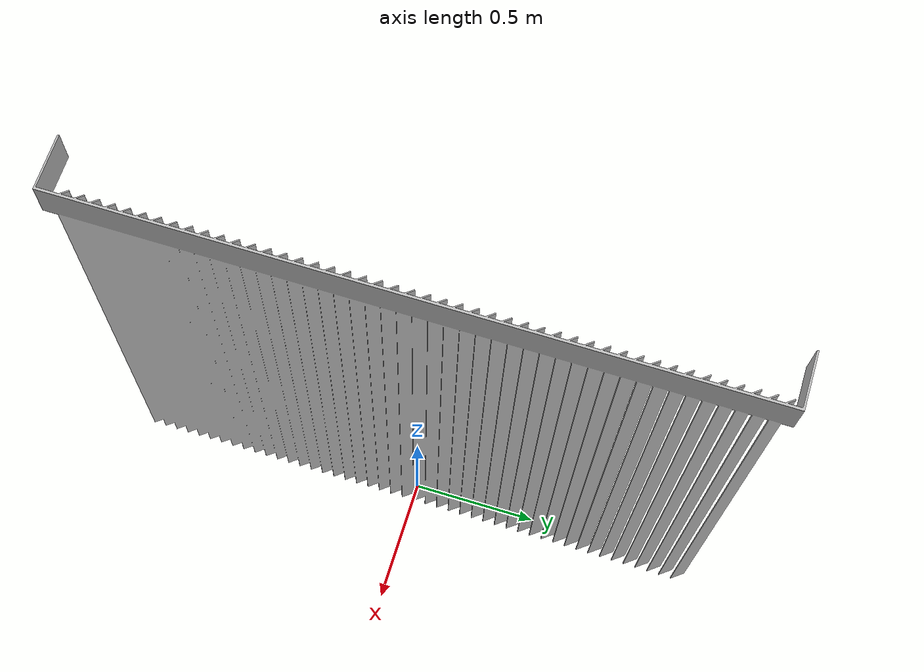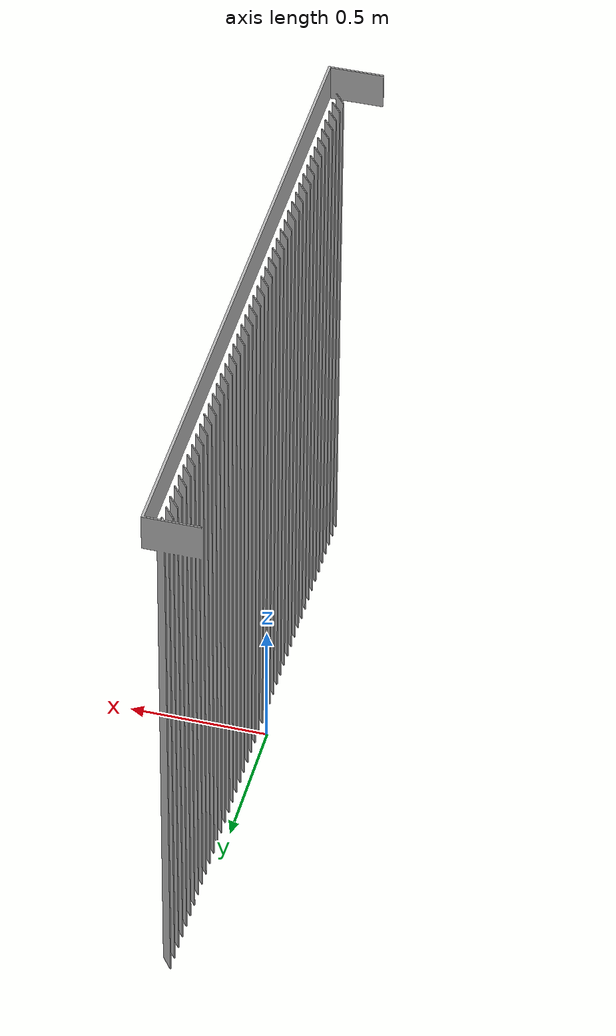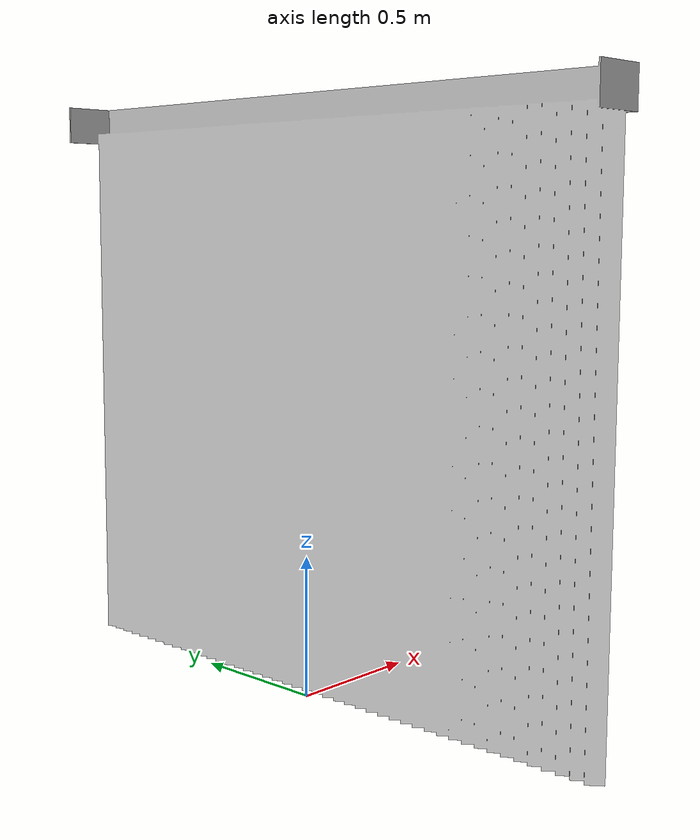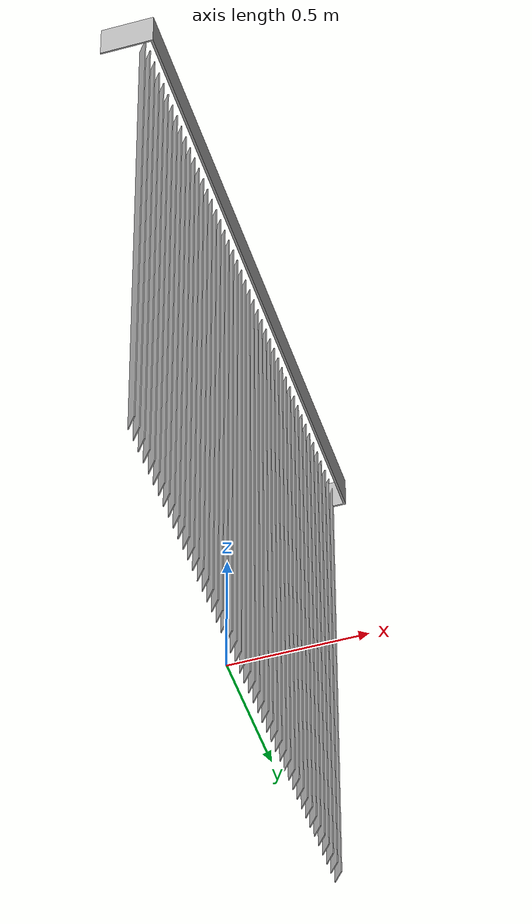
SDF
<?xml version='1.0'?>
<sdf version='1.4'>
  <model name='276'>
    <pose>0 0 0 0 0 0</pose>
    <static>true</static>
    <link name='link'>
      <collision name='collision'>
        <pose>0 0 0 0 0 0</pose>
        <geometry>
          <box>
            <size>0.196587 2.36598 2</size>
          </box>
        </geometry>
      </collision>
      <visual name='visual'>
        <pose>0 0 0 0 0 0</pose>
        <geometry>
          <mesh><uri>model://276/276.dae</uri></mesh>
        </geometry>
      </visual>
    </link>
  </model>
</sdf>
